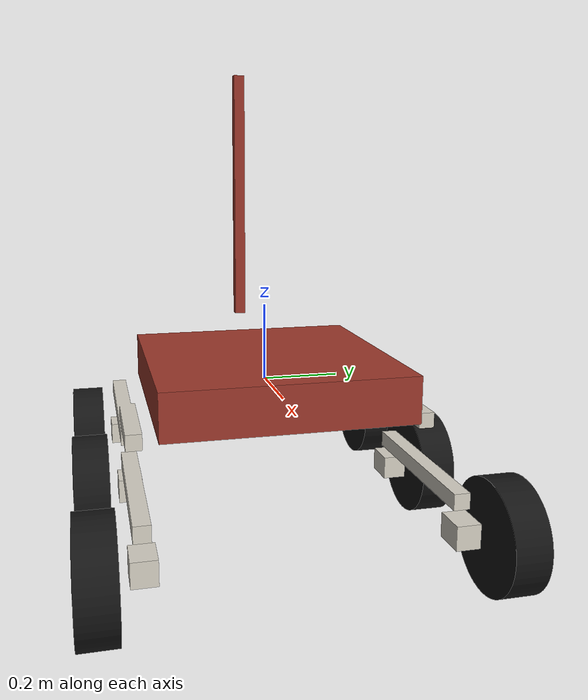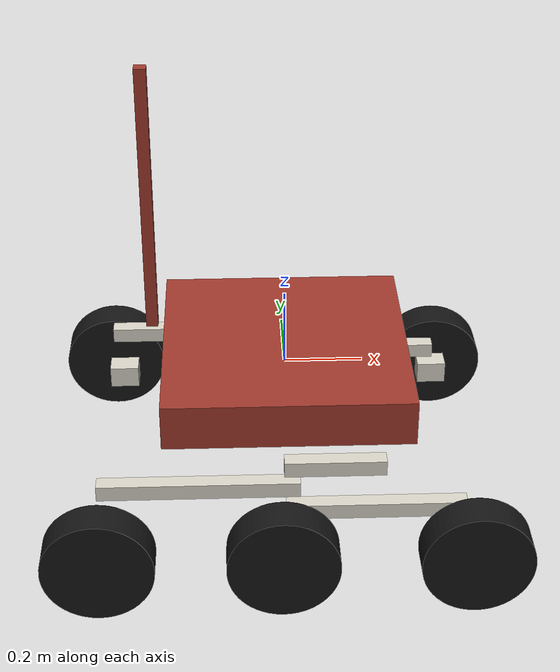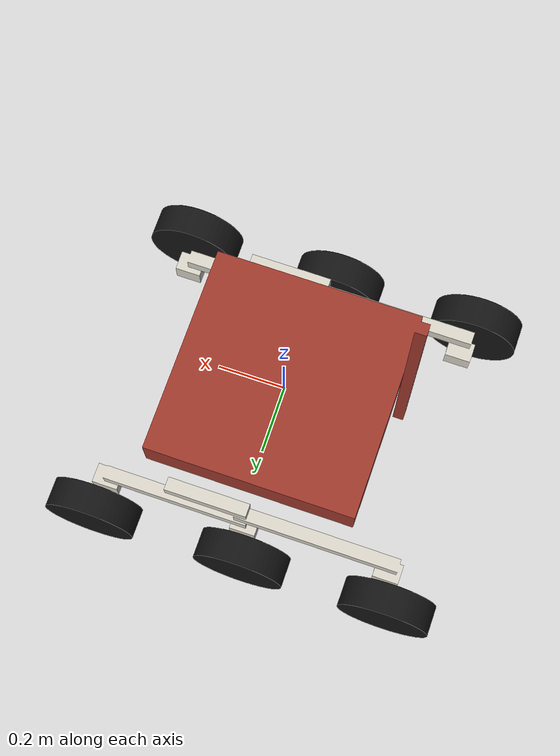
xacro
<?xml version="1.0"?>
<!-- The rover as Gazebo sees it: the plain description plus the Gazebo-only parts.
     Both included files are generated by tools/rover_cad/build_urdf.py. -->
<robot name="urc_rover_v5" xmlns:xacro="http://www.ros.org/wiki/xacro">
  <xacro:include filename="$(find rover_description)/urdf/rover.urdf"/>
  <xacro:include filename="$(find simulation)/urdf/rover_gazebo.xacro"/>
</robot>

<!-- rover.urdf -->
<!-- GENERATED by tools/rover_cad/build_urdf.py from placeholder_export. Edit tools/rover_cad/rover_config.yaml and re-run instead of editing this file. -->
<robot name="urc_rover_v5">
  <material name="mat_wheel">
    <color rgba="0.08 0.08 0.08 1"/>
  </material>
  <material name="mat_base_link">
    <color rgba="0.62 0.22 0.17 1"/>
  </material>
  <material name="mat_other">
    <color rgba="0.85 0.83 0.78 1"/>
  </material>
  <link name="base_link">
    <inertial>
      <origin xyz="-0.004439 0 0.015005" rpy="0 0 0"/>
      <mass value="12.0645"/>
      <inertia ixx="0.447448" ixy="0" ixz="0.0243114" iyy="0.465418" iyz="0" izz="0.805642"/>
    </inertial>
    <visual>
      <origin xyz="0 0 0" rpy="0 0 0"/>
      <geometry>
        <mesh filename="package://rover_description/meshes/base_link.stl"/>
      </geometry>
      <material name="mat_base_link"/>
    </visual>
    <collision>
      <origin xyz="0 0 0" rpy="0 0 0"/>
      <geometry>
        <mesh filename="package://rover_description/meshes/base_link_collision.stl"/>
      </geometry>
    </collision>
  </link>
  <link name="rocker_left">
    <inertial>
      <origin xyz="-0.178495 0 -0.141" rpy="0 0 0"/>
      <mass value="1.3392"/>
      <inertia ixx="0.00633052" ixy="0" ixz="-0.015732" iyy="0.0737486" iyz="0" izz="0.0678626"/>
    </inertial>
    <visual>
      <origin xyz="0 0 0" rpy="0 0 0"/>
      <geometry>
        <mesh filename="package://rover_description/meshes/rocker_left.stl"/>
      </geometry>
      <material name="mat_other"/>
    </visual>
    <collision>
      <origin xyz="0 0 0" rpy="0 0 0"/>
      <geometry>
        <mesh filename="package://rover_description/meshes/rocker_left_collision.stl"/>
      </geometry>
    </collision>
  </link>
  <link name="rocker_right">
    <inertial>
      <origin xyz="-0.178495 0 -0.141" rpy="0 0 0"/>
      <mass value="1.3392"/>
      <inertia ixx="0.00633052" ixy="0" ixz="-0.015732" iyy="0.0737486" iyz="0" izz="0.0678626"/>
    </inertial>
    <visual>
      <origin xyz="0 0 0" rpy="0 0 0"/>
      <geometry>
        <mesh filename="package://rover_description/meshes/rocker_right.stl"/>
      </geometry>
      <material name="mat_other"/>
    </visual>
    <collision>
      <origin xyz="0 0 0" rpy="0 0 0"/>
      <geometry>
        <mesh filename="package://rover_description/meshes/rocker_right_collision.stl"/>
      </geometry>
    </collision>
  </link>
  <link name="bogie_left">
    <inertial>
      <origin xyz="0.001222 0 -0.092111" rpy="0 0 0"/>
      <mass value="1.1664"/>
      <inertia ixx="0.00189604" ixy="0" ixz="0.0001008" iyy="0.0379634" iyz="0" izz="0.0365522"/>
    </inertial>
    <visual>
      <origin xyz="0 0 0" rpy="0 0 0"/>
      <geometry>
        <mesh filename="package://rover_description/meshes/bogie_left.stl"/>
      </geometry>
      <material name="mat_other"/>
    </visual>
    <collision>
      <origin xyz="0 0 0" rpy="0 0 0"/>
      <geometry>
        <mesh filename="package://rover_description/meshes/bogie_left_collision.stl"/>
      </geometry>
    </collision>
  </link>
  <link name="bogie_right">
    <inertial>
      <origin xyz="-0.001778 0 -0.096111" rpy="0 0 0"/>
      <mass value="1.1664"/>
      <inertia ixx="0.00189604" ixy="0" ixz="0.0001008" iyy="0.0379634" iyz="0" izz="0.0365522"/>
    </inertial>
    <visual>
      <origin xyz="0 0 0" rpy="0 0 0"/>
      <geometry>
        <mesh filename="package://rover_description/meshes/bogie_right.stl"/>
      </geometry>
      <material name="mat_other"/>
    </visual>
    <collision>
      <origin xyz="0 0 0" rpy="0 0 0"/>
      <geometry>
        <mesh filename="package://rover_description/meshes/bogie_right_collision.stl"/>
      </geometry>
    </collision>
  </link>
  <link name="wheel_front_left">
    <inertial>
      <origin xyz="-0 0 -0" rpy="0 0 0"/>
      <mass value="3.3156"/>
      <inertia ixx="0.018439" ixy="0" ixz="0" iyy="0.032401" iyz="0" izz="0.018439"/>
    </inertial>
    <visual>
      <origin xyz="0 0 0" rpy="0 0 0"/>
      <geometry>
        <mesh filename="package://rover_description/meshes/wheel_front_left.stl"/>
      </geometry>
      <material name="mat_wheel"/>
    </visual>
    <collision>
      <origin xyz="0 0 0" rpy="1.570796 0 0"/>
      <geometry>
        <cylinder radius="0.1400" length="0.0900"/>
      </geometry>
    </collision>
  </link>
  <link name="wheel_middle_left">
    <inertial>
      <origin xyz="0 0 0" rpy="0 0 0"/>
      <mass value="3.3156"/>
      <inertia ixx="0.018439" ixy="0" ixz="0" iyy="0.032401" iyz="0" izz="0.018439"/>
    </inertial>
    <visual>
      <origin xyz="0 0 0" rpy="0 0 0"/>
      <geometry>
        <mesh filename="package://rover_description/meshes/wheel_middle_left.stl"/>
      </geometry>
      <material name="mat_wheel"/>
    </visual>
    <collision>
      <origin xyz="0 0 0" rpy="1.570796 0 0"/>
      <geometry>
        <cylinder radius="0.1400" length="0.0900"/>
      </geometry>
    </collision>
  </link>
  <link name="wheel_rear_left">
    <inertial>
      <origin xyz="0 0 0" rpy="0 0 0"/>
      <mass value="3.3156"/>
      <inertia ixx="0.018439" ixy="0" ixz="0" iyy="0.032401" iyz="0" izz="0.018439"/>
    </inertial>
    <visual>
      <origin xyz="0 0 0" rpy="0 0 0"/>
      <geometry>
        <mesh filename="package://rover_description/meshes/wheel_rear_left.stl"/>
      </geometry>
      <material name="mat_wheel"/>
    </visual>
    <collision>
      <origin xyz="0 0 0" rpy="1.570796 0 0"/>
      <geometry>
        <cylinder radius="0.1400" length="0.0900"/>
      </geometry>
    </collision>
  </link>
  <link name="wheel_front_right">
    <inertial>
      <origin xyz="-0 -0 -0" rpy="0 0 0"/>
      <mass value="3.3156"/>
      <inertia ixx="0.018439" ixy="0" ixz="0" iyy="0.032401" iyz="0" izz="0.018439"/>
    </inertial>
    <visual>
      <origin xyz="0 0 0" rpy="0 0 0"/>
      <geometry>
        <mesh filename="package://rover_description/meshes/wheel_front_right.stl"/>
      </geometry>
      <material name="mat_wheel"/>
    </visual>
    <collision>
      <origin xyz="0 0 0" rpy="1.570796 0 0"/>
      <geometry>
        <cylinder radius="0.1400" length="0.0900"/>
      </geometry>
    </collision>
  </link>
  <link name="wheel_middle_right">
    <inertial>
      <origin xyz="-0 -0 0" rpy="0 0 0"/>
      <mass value="3.3156"/>
      <inertia ixx="0.018439" ixy="0" ixz="0" iyy="0.032401" iyz="0" izz="0.018439"/>
    </inertial>
    <visual>
      <origin xyz="0 0 0" rpy="0 0 0"/>
      <geometry>
        <mesh filename="package://rover_description/meshes/wheel_middle_right.stl"/>
      </geometry>
      <material name="mat_wheel"/>
    </visual>
    <collision>
      <origin xyz="0 0 0" rpy="1.570796 0 0"/>
      <geometry>
        <cylinder radius="0.1400" length="0.0900"/>
      </geometry>
    </collision>
  </link>
  <link name="wheel_rear_right">
    <inertial>
      <origin xyz="-0 -0 -0" rpy="0 0 0"/>
      <mass value="3.3156"/>
      <inertia ixx="0.018439" ixy="0" ixz="0" iyy="0.032401" iyz="0" izz="0.018439"/>
    </inertial>
    <visual>
      <origin xyz="0 0 0" rpy="0 0 0"/>
      <geometry>
        <mesh filename="package://rover_description/meshes/wheel_rear_right.stl"/>
      </geometry>
      <material name="mat_wheel"/>
    </visual>
    <collision>
      <origin xyz="0 0 0" rpy="1.570796 0 0"/>
      <geometry>
        <cylinder radius="0.1400" length="0.0900"/>
      </geometry>
    </collision>
  </link>
  <joint name="rocker_left_joint" type="revolute">
    <parent link="base_link"/>
    <child link="rocker_left"/>
    <origin xyz="0 0.366 0" rpy="0 0 0"/>
    <axis xyz="0 1 0"/>
    <limit lower="-0.6109" upper="0.6109" effort="1000" velocity="10"/>
    <dynamics damping="5.000" friction="0"/>
  </joint>
  <joint name="rocker_right_joint" type="revolute">
    <parent link="base_link"/>
    <child link="rocker_right"/>
    <origin xyz="0 -0.366 0" rpy="0 0 0"/>
    <axis xyz="0 1 0"/>
    <limit lower="-0.6109" upper="0.6109" effort="1000" velocity="10"/>
    <dynamics damping="5.000" friction="0"/>
  </joint>
  <joint name="bogie_left_joint" type="revolute">
    <parent link="rocker_left"/>
    <child link="bogie_left"/>
    <origin xyz="0.216 0 -0.14" rpy="0 0 0"/>
    <axis xyz="0 1 0"/>
    <limit lower="-0.7854" upper="0.7854" effort="1000" velocity="10"/>
    <dynamics damping="1.000" friction="0"/>
  </joint>
  <joint name="bogie_right_joint" type="revolute">
    <parent link="rocker_right"/>
    <child link="bogie_right"/>
    <origin xyz="0.219 0 -0.136" rpy="0 0 0"/>
    <axis xyz="0 1 0"/>
    <limit lower="-0.7854" upper="0.7854" effort="1000" velocity="10"/>
    <dynamics damping="1.000" friction="0"/>
  </joint>
  <joint name="wheel_front_left_joint" type="continuous">
    <parent link="bogie_left"/>
    <child link="wheel_front_left"/>
    <origin xyz="0.236 0.099 -0.147" rpy="0 0 0"/>
    <axis xyz="0 1 0"/>
    <limit effort="200" velocity="30"/>
    <dynamics damping="0.1" friction="0"/>
  </joint>
  <joint name="wheel_middle_left_joint" type="continuous">
    <parent link="bogie_left"/>
    <child link="wheel_middle_left"/>
    <origin xyz="-0.24 0.099 -0.141" rpy="0 0 0"/>
    <axis xyz="0 1 0"/>
    <limit effort="200" velocity="30"/>
    <dynamics damping="0.1" friction="0"/>
  </joint>
  <joint name="wheel_rear_left_joint" type="continuous">
    <parent link="rocker_left"/>
    <child link="wheel_rear_left"/>
    <origin xyz="-0.479 0.099 -0.267" rpy="0 0 0"/>
    <axis xyz="0 1 0"/>
    <limit effort="200" velocity="30"/>
    <dynamics damping="0.1" friction="0"/>
  </joint>
  <joint name="wheel_front_right_joint" type="continuous">
    <parent link="bogie_right"/>
    <child link="wheel_front_right"/>
    <origin xyz="0.237 -0.099 -0.144" rpy="0 0 0"/>
    <axis xyz="0 1 0"/>
    <limit effort="200" velocity="30"/>
    <dynamics damping="0.1" friction="0"/>
  </joint>
  <joint name="wheel_middle_right_joint" type="continuous">
    <parent link="bogie_right"/>
    <child link="wheel_middle_right"/>
    <origin xyz="-0.239 -0.099 -0.143" rpy="0 0 0"/>
    <axis xyz="0 1 0"/>
    <limit effort="200" velocity="30"/>
    <dynamics damping="0.1" friction="0"/>
  </joint>
  <joint name="wheel_rear_right_joint" type="continuous">
    <parent link="rocker_right"/>
    <child link="wheel_rear_right"/>
    <origin xyz="-0.473 -0.099 -0.276" rpy="0 0 0"/>
    <axis xyz="0 1 0"/>
    <limit effort="200" velocity="30"/>
    <dynamics damping="0.1" friction="0"/>
  </joint>
</robot>
